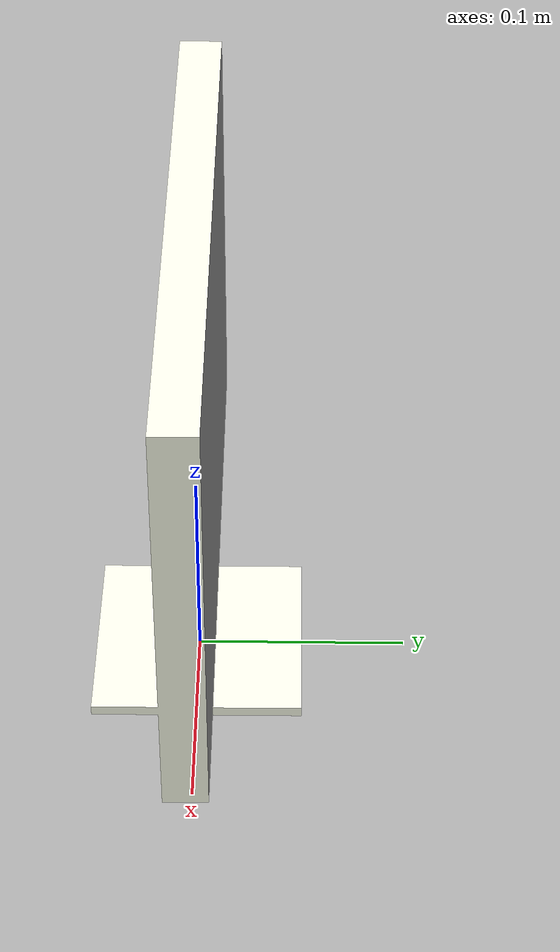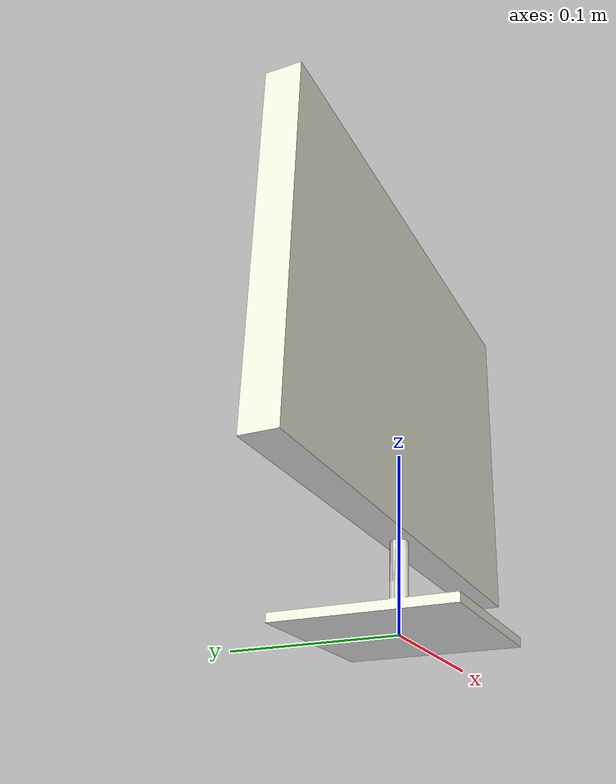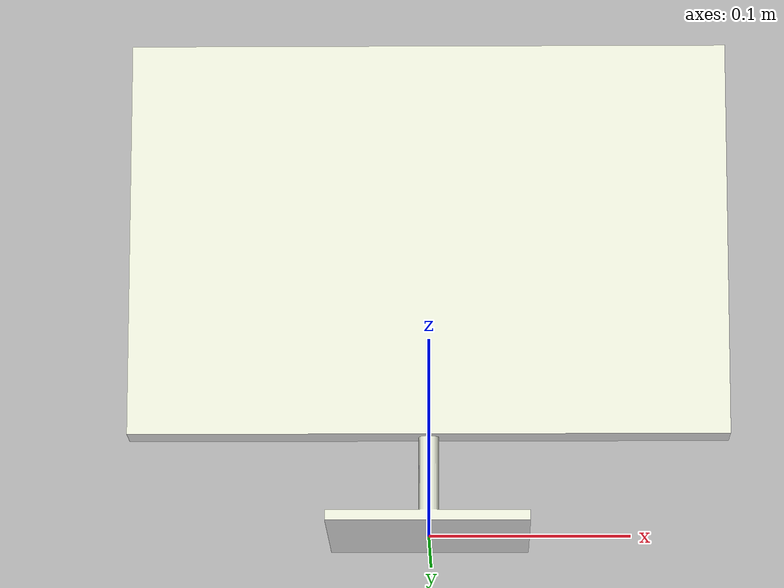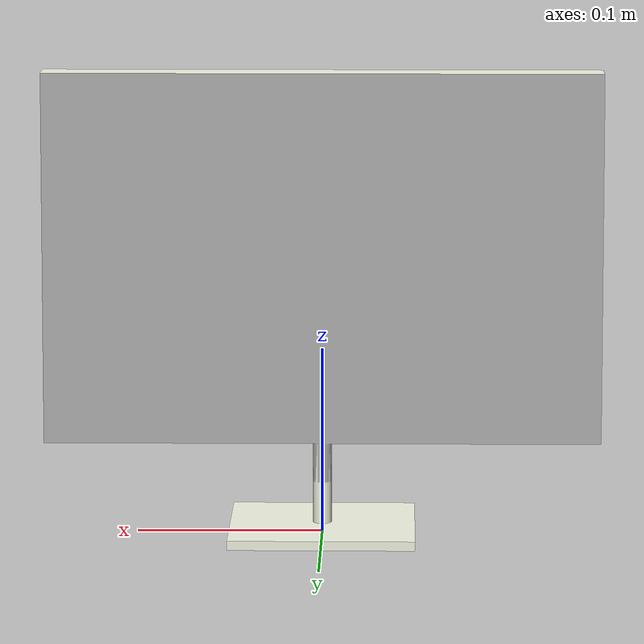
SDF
<?xml version="1.0" ?>
<sdf version="1.6">
  <model name="Overtaking_prohibited">
    <static>true</static>
    <link name="link">
      <collision name="collision">
        <geometry>
          <mesh>
            <uri>model://Overtaking_prohibited/meshes/overtaking_prohibited.dae</uri>
          </mesh>
        </geometry>
      </collision>
      <visual name="visual">
        <geometry>
          <mesh>
            <uri>model://Overtaking_prohibited/meshes/overtaking_prohibited.dae</uri>
          </mesh>
        </geometry>
      </visual>
    </link>
  </model>
</sdf>
